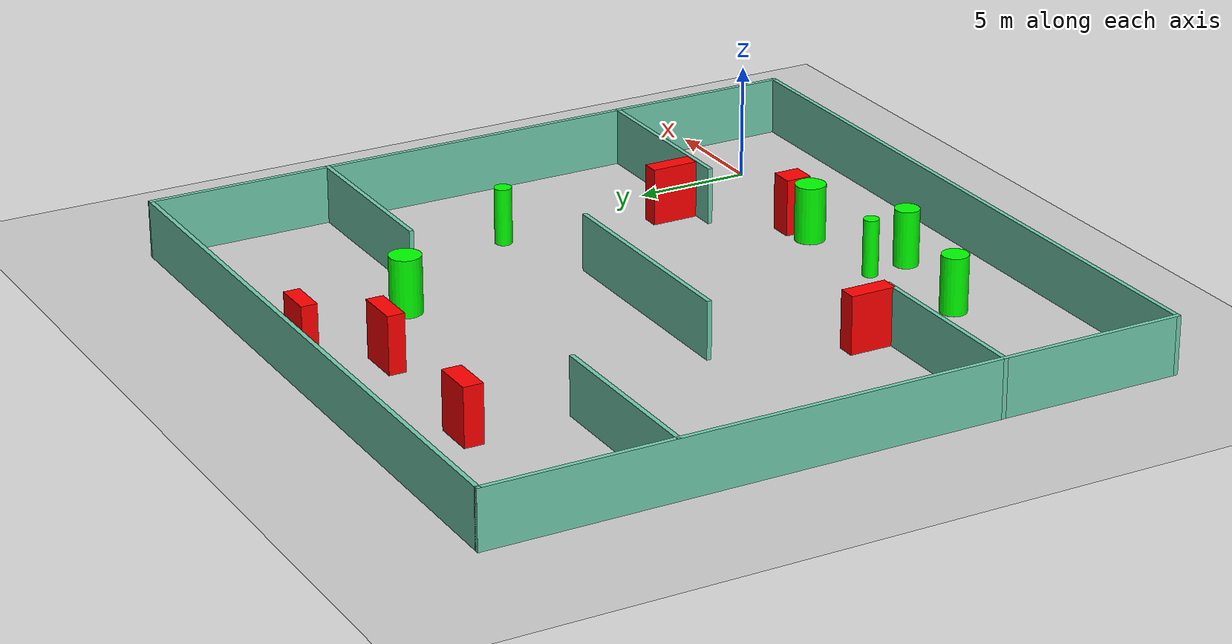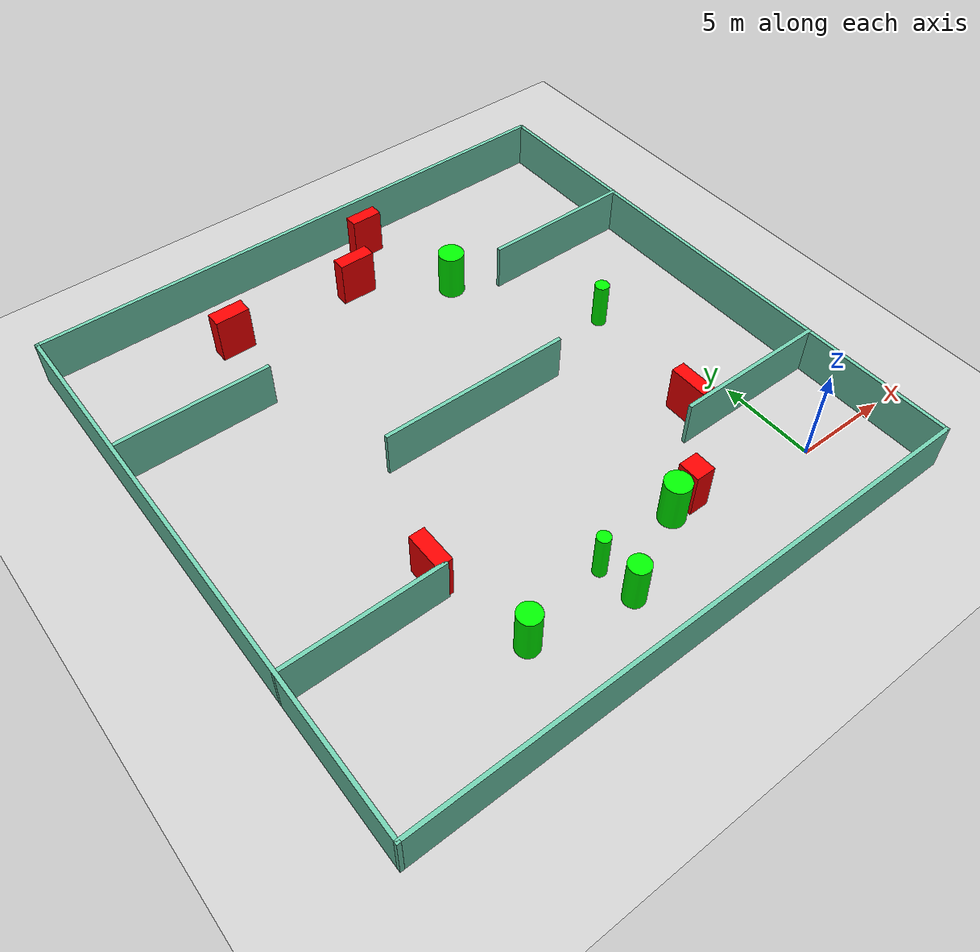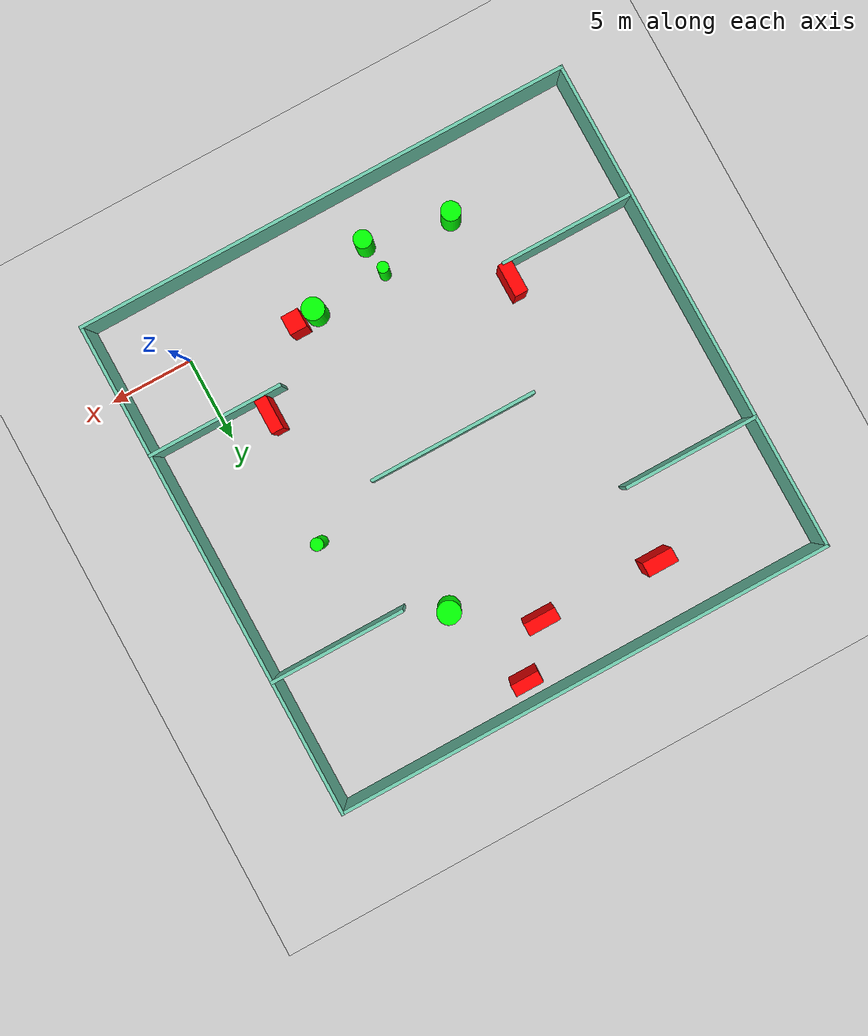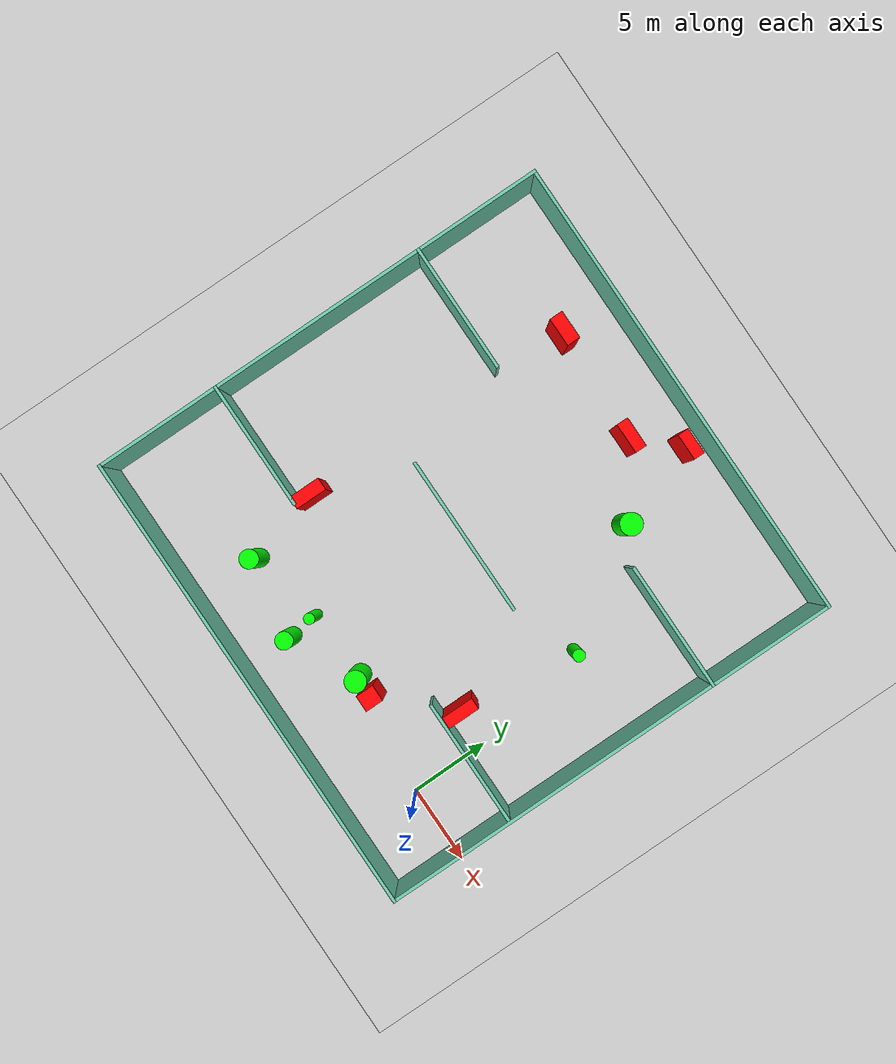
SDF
<sdf version="1.7">
 <world name="default">
  <light name="sun" type="directional">
   <pose>0 0 10 0 -0 0</pose>
   <diffuse>0.8 0.8 0.8 1</diffuse>
   <specular>0.2 0.2 0.2 1</specular>
   <attenuation>
    <range>1000</range>
    <constant>0.9</constant>
    <linear>0.01</linear>
    <quadratic>0.001</quadratic>
   </attenuation>
   <direction>-0.5 0.1 -0.9</direction>
   <spot><inner_angle>0</inner_angle><outer_angle>0</outer_angle><falloff>0</falloff></spot>
  </light>
  <model name="ground_plane">
   <static>1</static>
   <link name="link">
    <collision name="collision">
     <geometry><plane><normal>0 0 1</normal><size>100 100</size></plane></geometry>
     <surface>
      <contact><collide_bitmask>65535</collide_bitmask></contact>
      <friction><ode><mu>100</mu><mu2>50</mu2></ode></friction>
     </surface>
    </collision>
    <visual name="visual">
     <cast_shadows>0</cast_shadows>
     <geometry><plane><normal>0 0 1</normal><size>100 100</size></plane></geometry>
     <material>
      <script><uri>file://media/materials/scripts/gazebo.material</uri><name>Gazebo/Grey</name></script>
     </material>
    </visual>
   </link>
  </model>
  <gravity>0 0 -9.8</gravity>
  <magnetic_field>6e-06 2.3e-05 -4.2e-05</magnetic_field>
  <atmosphere type="adiabatic"/>
  <physics type="ode">
   <max_step_size>0.001</max_step_size>
   <real_time_factor>1</real_time_factor>
   <real_time_update_rate>1000</real_time_update_rate>
  </physics>
  <scene><ambient>0.4 0.4 0.4 1</ambient><background>0.7 0.7 0.7 1</background><shadows>1</shadows></scene>
  <spherical_coordinates>
   <surface_model>EARTH_WGS84</surface_model>
   <latitude_deg>0</latitude_deg>
   <longitude_deg>0</longitude_deg>
   <elevation>0</elevation>
   <heading_deg>0</heading_deg>
  </spherical_coordinates>
  <model name="my_base_walls">
   <link name="Wall_10">
    <collision name="Wall_10_Collision">
     <geometry><box><size>8.2 0.2 2.5</size></box></geometry>
     <pose>0 0 1.25 0 -0 0</pose>
    </collision>
    <visual name="Wall_10_Visual">
     <pose>0 0 1.25 0 -0 0</pose>
     <geometry><box><size>8.2 0.2 2.5</size></box></geometry>
     <material>
      <script><uri>file://media/materials/scripts/gazebo.material</uri><name>Gazebo/Grey</name></script>
      <ambient>0.435294 0.796078 0.67451 1</ambient>
     </material>
     <meta><layer>0</layer></meta>
    </visual>
    <pose>-11 -7 0 0 -0 0</pose>
   </link>
   <link name="Wall_12">
    <collision name="Wall_12_Collision">
     <geometry><box><size>8.2 0.2 2.5</size></box></geometry>
     <pose>0 0 1.25 0 -0 0</pose>
    </collision>
    <visual name="Wall_12_Visual">
     <pose>0 0 1.25 0 -0 0</pose>
     <geometry><box><size>8.2 0.2 2.5</size></box></geometry>
     <material>
      <script><uri>file://media/materials/scripts/gazebo.material</uri><name>Gazebo/Grey</name></script>
      <ambient>0.435294 0.796078 0.67451 1</ambient>
     </material>
     <meta><layer>0</layer></meta>
    </visual>
    <pose>-11 7 0 0 -0 0</pose>
   </link>
   <link name="Wall_14">
    <collision name="Wall_14_Collision">
     <geometry><box><size>8.2 0.2 2.5</size></box></geometry>
     <pose>0 0 1.25 0 -0 0</pose>
    </collision>
    <visual name="Wall_14_Visual">
     <pose>0 0 1.25 0 -0 0</pose>
     <geometry><box><size>8.2 0.2 2.5</size></box></geometry>
     <material>
      <script><uri>file://media/materials/scripts/gazebo.material</uri><name>Gazebo/Grey</name></script>
      <ambient>0.435294 0.796078 0.67451 1</ambient>
     </material>
     <meta><layer>0</layer></meta>
    </visual>
    <pose>11 7 0 0 -0 3.14159</pose>
   </link>
   <link name="Wall_16">
    <collision name="Wall_16_Collision">
     <geometry><box><size>10.2 0.2 2.5</size></box></geometry>
     <pose>0 0 1.25 0 -0 0</pose>
    </collision>
    <visual name="Wall_16_Visual">
     <pose>0 0 1.25 0 -0 0</pose>
     <geometry><box><size>10.2 0.2 2.5</size></box></geometry>
     <material>
      <script><uri>file://media/materials/scripts/gazebo.material</uri><name>Gazebo/Grey</name></script>
      <ambient>0.435294 0.796078 0.67451 1</ambient>
     </material>
     <meta><layer>0</layer></meta>
    </visual>
    <pose>0 0 0 0 -0 3.14159</pose>
   </link>
   <link name="Wall_2">
    <collision name="Wall_2_Collision">
     <geometry><box><size>30.2 0.2 2.5</size></box></geometry>
     <pose>0 0 1.25 0 -0 0</pose>
    </collision>
    <visual name="Wall_2_Visual">
     <pose>0 0 1.25 0 -0 0</pose>
     <geometry><box><size>30.2 0.2 2.5</size></box></geometry>
     <material>
      <script><uri>file://media/materials/scripts/gazebo.material</uri><name>Gazebo/Grey</name></script>
      <ambient>0.435294 0.796078 0.67451 1</ambient>
     </material>
     <meta><layer>0</layer></meta>
    </visual>
    <pose>0 -15 0 0 -0 3.14159</pose>
   </link>
   <link name="Wall_3">
    <collision name="Wall_3_Collision">
     <geometry><box><size>30.2 0.2 2.5</size></box></geometry>
     <pose>0 0 1.25 0 -0 0</pose>
    </collision>
    <visual name="Wall_3_Visual">
     <pose>0 0 1.25 0 -0 0</pose>
     <geometry><box><size>30.2 0.2 2.5</size></box></geometry>
     <material>
      <script><uri>file://media/materials/scripts/gazebo.material</uri><name>Gazebo/Grey</name></script>
      <ambient>0.435294 0.796078 0.67451 1</ambient>
     </material>
     <meta><layer>0</layer></meta>
    </visual>
    <pose>-15 0 0 0 -0 1.5708</pose>
   </link>
   <link name="Wall_4">
    <collision name="Wall_4_Collision">
     <geometry><box><size>30.2 0.2 2.5</size></box></geometry>
     <pose>0 0 1.25 0 -0 0</pose>
    </collision>
    <visual name="Wall_4_Visual">
     <pose>0 0 1.25 0 -0 0</pose>
     <geometry><box><size>30.2 0.2 2.5</size></box></geometry>
     <material>
      <script><uri>file://media/materials/scripts/gazebo.material</uri><name>Gazebo/Grey</name></script>
      <ambient>0.435294 0.796078 0.67451 1</ambient>
     </material>
     <meta><layer>0</layer></meta>
    </visual>
    <pose>0 15 0 0 -0 0</pose>
   </link>
   <link name="Wall_6">
    <collision name="Wall_6_Collision">
     <geometry><box><size>30.2 0.2 2.5</size></box></geometry>
     <pose>0 0 1.25 0 -0 0</pose>
    </collision>
    <visual name="Wall_6_Visual">
     <pose>0 0 1.25 0 -0 0</pose>
     <geometry><box><size>30.2 0.2 2.5</size></box></geometry>
     <material>
      <script><uri>file://media/materials/scripts/gazebo.material</uri><name>Gazebo/Grey</name></script>
      <ambient>0.435294 0.796078 0.67451 1</ambient>
     </material>
     <meta><layer>0</layer></meta>
    </visual>
    <pose>15 0 0 0 -0 1.5708</pose>
   </link>
   <link name="Wall_8">
    <collision name="Wall_8_Collision">
     <geometry><box><size>8.2 0.2 2.5</size></box></geometry>
     <pose>0 0 1.25 0 -0 0</pose>
    </collision>
    <visual name="Wall_8_Visual">
     <pose>0 0 1.25 0 -0 0</pose>
     <geometry><box><size>8.2 0.2 2.5</size></box></geometry>
     <material>
      <script><uri>file://media/materials/scripts/gazebo.material</uri><name>Gazebo/Grey</name></script>
      <ambient>0.435294 0.796078 0.67451 1</ambient>
     </material>
     <meta><layer>0</layer></meta>
    </visual>
    <pose>11 -7 0 0 -0 3.14159</pose>
   </link>
   <static>1</static>
   <pose>-11 11 0 0 -0 0</pose>
  </model>
  <model name="cylinder1">
   <static>1</static>
   <link name="link">
    <inertial>
     <mass>1</mass>
     <inertia><ixx>0.5</ixx><ixy>0</ixy><ixz>0</ixz><iyy>0.5</iyy><iyz>0</iyz><izz>1</izz></inertia>
    </inertial>
    <collision name="collision">
     <geometry><cylinder><radius>0.5377593007194276</radius><length>2.5</length></cylinder></geometry>
    </collision>
    <visual name="visual">
     <geometry><cylinder><radius>0.5377593007194276</radius><length>2.5</length></cylinder></geometry>
     <material>
      <ambient>0 1 0 1</ambient>
      <diffuse>0 1 0 1</diffuse>
      <specular>0.1 0.1 0.1 1</specular>
      <emissive>0 0 0 0</emissive>
     </material>
    </visual>
   </link>
   <pose>-11.842425273016218 -0.8709075588077271 1.25 0 0 0</pose>
  </model>
  <model name="cylinder2">
   <static>1</static>
   <link name="link">
    <inertial>
     <mass>1</mass>
     <inertia><ixx>0.5</ixx><ixy>0</ixy><ixz>0</ixz><iyy>0.5</iyy><iyz>0</iyz><izz>1</izz></inertia>
    </inertial>
    <collision name="collision">
     <geometry><cylinder><radius>0.6857197016978339</radius><length>2.5</length></cylinder></geometry>
    </collision>
    <visual name="visual">
     <geometry><cylinder><radius>0.6857197016978339</radius><length>2.5</length></cylinder></geometry>
     <material>
      <ambient>0 1 0 1</ambient>
      <diffuse>0 1 0 1</diffuse>
      <specular>0.1 0.1 0.1 1</specular>
      <emissive>0 0 0 0</emissive>
     </material>
    </visual>
   </link>
   <pose>-6.2164253970151915 19.29844934661536 1.25 0 0 0</pose>
  </model>
  <model name="cylinder3">
   <static>1</static>
   <link name="link">
    <inertial>
     <mass>1</mass>
     <inertia><ixx>0.5</ixx><ixy>0</ixy><ixz>0</ixz><iyy>0.5</iyy><iyz>0</iyz><izz>1</izz></inertia>
    </inertial>
    <collision name="collision">
     <geometry><cylinder><radius>0.37644601818141066</radius><length>2.5</length></cylinder></geometry>
    </collision>
    <visual name="visual">
     <geometry><cylinder><radius>0.37644601818141066</radius><length>2.5</length></cylinder></geometry>
     <material>
      <ambient>0 1 0 1</ambient>
      <diffuse>0 1 0 1</diffuse>
      <specular>0.1 0.1 0.1 1</specular>
      <emissive>0 0 0 0</emissive>
     </material>
    </visual>
   </link>
   <pose>-1.6846123276615685 12.610181069016045 1.25 0 0 0</pose>
  </model>
  <model name="cylinder4">
   <static>1</static>
   <link name="link">
    <inertial>
     <mass>1</mass>
     <inertia><ixx>0.5</ixx><ixy>0</ixy><ixz>0</ixz><iyy>0.5</iyy><iyz>0</iyz><izz>1</izz></inertia>
    </inertial>
    <collision name="collision">
     <geometry><cylinder><radius>0.3331654758110054</radius><length>2.5</length></cylinder></geometry>
    </collision>
    <visual name="visual">
     <geometry><cylinder><radius>0.3331654758110054</radius><length>2.5</length></cylinder></geometry>
     <material>
      <ambient>0 1 0 1</ambient>
      <diffuse>0 1 0 1</diffuse>
      <specular>0.1 0.1 0.1 1</specular>
      <emissive>0 0 0 0</emissive>
     </material>
    </visual>
   </link>
   <pose>-12.076791897872015 1.0230136604624498 1.25 0 0 0</pose>
  </model>
  <model name="cylinder5">
   <static>1</static>
   <link name="link">
    <inertial>
     <mass>1</mass>
     <inertia><ixx>0.5</ixx><ixy>0</ixy><ixz>0</ixz><iyy>0.5</iyy><iyz>0</iyz><izz>1</izz></inertia>
    </inertial>
    <collision name="collision">
     <geometry><cylinder><radius>0.5779518461665991</radius><length>2.5</length></cylinder></geometry>
    </collision>
    <visual name="visual">
     <geometry><cylinder><radius>0.5779518461665991</radius><length>2.5</length></cylinder></geometry>
     <material>
      <ambient>0 1 0 1</ambient>
      <diffuse>0 1 0 1</diffuse>
      <specular>0.1 0.1 0.1 1</specular>
      <emissive>0 0 0 0</emissive>
     </material>
    </visual>
   </link>
   <pose>-16.830315925912558 0.09084007952000483 1.25 0 0 0</pose>
  </model>
  <model name="cylinder6">
   <static>1</static>
   <link name="link">
    <inertial>
     <mass>1</mass>
     <inertia><ixx>0.5</ixx><ixy>0</ixy><ixz>0</ixz><iyy>0.5</iyy><iyz>0</iyz><izz>1</izz></inertia>
    </inertial>
    <collision name="collision">
     <geometry><cylinder><radius>0.6613033693258331</radius><length>2.5</length></cylinder></geometry>
    </collision>
    <visual name="visual">
     <geometry><cylinder><radius>0.6613033693258331</radius><length>2.5</length></cylinder></geometry>
     <material>
      <ambient>0 1 0 1</ambient>
      <diffuse>0 1 0 1</diffuse>
      <specular>0.1 0.1 0.1 1</specular>
      <emissive>0 0 0 0</emissive>
     </material>
    </visual>
   </link>
   <pose>-7.61992048829107 1.1921706959896863 1.25 0 0 0</pose>
  </model>
  <model name="box1">
   <static>1</static>
   <link name="link">
    <inertial>
     <mass>1</mass>
     <inertia><ixx>0.083</ixx><ixy>0</ixy><ixz>0</ixz><iyy>0.083</iyy><iyz>0</iyz><izz>0.083</izz></inertia>
    </inertial>
    <collision name="collision">
     <geometry><box><size>1.6827955933116494 0.6902004587874554 2.5</size></box></geometry>
    </collision>
    <visual name="visual">
     <geometry><box><size>1.6827955933116494 0.6902004587874554 2.5</size></box></geometry>
     <material>
      <ambient>1 0 0 1</ambient>
      <diffuse>1 0 0 1</diffuse>
      <specular>0.1 0.1 0.1 1</specular>
      <emissive>0 0 0 0</emissive>
     </material>
    </visual>
    <sensor name="my_contact" type="contact">
     <contact><collision>box_collision</collision><topic>__default_topic__</topic></contact>
    </sensor>
   </link>
   <pose>-8.08651266801193 24.68769123193585 1.25 0 0 0</pose>
  </model>
  <model name="box2">
   <static>1</static>
   <link name="link">
    <inertial>
     <mass>1</mass>
     <inertia><ixx>0.083</ixx><ixy>0</ixy><ixz>0</ixz><iyy>0.083</iyy><iyz>0</iyz><izz>0.083</izz></inertia>
    </inertial>
    <collision name="collision">
     <geometry><box><size>1.0416819123686079 1.1324691478693425 2.5</size></box></geometry>
    </collision>
    <visual name="visual">
     <geometry><box><size>1.0416819123686079 1.1324691478693425 2.5</size></box></geometry>
     <material>
      <ambient>1 0 0 1</ambient>
      <diffuse>1 0 0 1</diffuse>
      <specular>0.1 0.1 0.1 1</specular>
      <emissive>0 0 0 0</emissive>
     </material>
    </visual>
    <sensor name="my_contact" type="contact">
     <contact><collision>box_collision</collision><topic>__default_topic__</topic></contact>
    </sensor>
   </link>
   <pose>-6.3680818609925005 1.3179976968796563 1.25 0 0 0</pose>
  </model>
  <model name="box3">
   <static>1</static>
   <link name="link">
    <inertial>
     <mass>1</mass>
     <inertia><ixx>0.083</ixx><ixy>0</ixy><ixz>0</ixz><iyy>0.083</iyy><iyz>0</iyz><izz>0.083</izz></inertia>
    </inertial>
    <collision name="collision">
     <geometry><box><size>0.7331777716322266 2.0292654361603066 2.5</size></box></geometry>
    </collision>
    <visual name="visual">
     <geometry><box><size>0.7331777716322266 2.0292654361603066 2.5</size></box></geometry>
     <material>
      <ambient>1 0 0 1</ambient>
      <diffuse>1 0 0 1</diffuse>
      <specular>0.1 0.1 0.1 1</specular>
      <emissive>0 0 0 0</emissive>
     </material>
    </visual>
    <sensor name="my_contact" type="contact">
     <contact><collision>box_collision</collision><topic>__default_topic__</topic></contact>
    </sensor>
   </link>
   <pose>-2.7411949197573584 5.144108413030176 1.25 0 0 0</pose>
  </model>
  <model name="box4">
   <static>1</static>
   <link name="link">
    <inertial>
     <mass>1</mass>
     <inertia><ixx>0.083</ixx><ixy>0</ixy><ixz>0</ixz><iyy>0.083</iyy><iyz>0</iyz><izz>0.083</izz></inertia>
    </inertial>
    <collision name="collision">
     <geometry><box><size>1.9305829989139671 0.7376106900577656 2.5</size></box></geometry>
    </collision>
    <visual name="visual">
     <geometry><box><size>1.9305829989139671 0.7376106900577656 2.5</size></box></geometry>
     <material>
      <ambient>1 0 0 1</ambient>
      <diffuse>1 0 0 1</diffuse>
      <specular>0.1 0.1 0.1 1</specular>
      <emissive>0 0 0 0</emissive>
     </material>
    </visual>
    <sensor name="my_contact" type="contact">
     <contact><collision>box_collision</collision><topic>__default_topic__</topic></contact>
    </sensor>
   </link>
   <pose>-10.413759590397113 22.151065821087705 1.25 0 0 0</pose>
  </model>
  <model name="box5">
   <static>1</static>
   <link name="link">
    <inertial>
     <mass>1</mass>
     <inertia><ixx>0.083</ixx><ixy>0</ixy><ixz>0</ixz><iyy>0.083</iyy><iyz>0</iyz><izz>0.083</izz></inertia>
    </inertial>
    <collision name="collision">
     <geometry><box><size>1.8178089546272325 0.8465912600159049 2.5</size></box></geometry>
    </collision>
    <visual name="visual">
     <geometry><box><size>1.8178089546272325 0.8465912600159049 2.5</size></box></geometry>
     <material>
      <ambient>1 0 0 1</ambient>
      <diffuse>1 0 0 1</diffuse>
      <specular>0.1 0.1 0.1 1</specular>
      <emissive>0 0 0 0</emissive>
     </material>
    </visual>
    <sensor name="my_contact" type="contact">
     <contact><collision>box_collision</collision><topic>__default_topic__</topic></contact>
    </sensor>
   </link>
   <pose>-17.601254685525884 22.41465688253827 1.25 0 0 0</pose>
  </model>
  <model name="box6">
   <static>1</static>
   <link name="link">
    <inertial>
     <mass>1</mass>
     <inertia><ixx>0.083</ixx><ixy>0</ixy><ixz>0</ixz><iyy>0.083</iyy><iyz>0</iyz><izz>0.083</izz></inertia>
    </inertial>
    <collision name="collision">
     <geometry><box><size>0.7986625599500924 1.9819260671184535 2.5</size></box></geometry>
    </collision>
    <visual name="visual">
     <geometry><box><size>0.7986625599500924 1.9819260671184535 2.5</size></box></geometry>
     <material>
      <ambient>1 0 0 1</ambient>
      <diffuse>1 0 0 1</diffuse>
      <specular>0.1 0.1 0.1 1</specular>
      <emissive>0 0 0 0</emissive>
     </material>
    </visual>
    <sensor name="my_contact" type="contact">
     <contact><collision>box_collision</collision><topic>__default_topic__</topic></contact>
    </sensor>
   </link>
   <pose>-18.048431097149884 4.962164496628366 1.25 0 0 0</pose>
  </model>
 </world>
</sdf>
